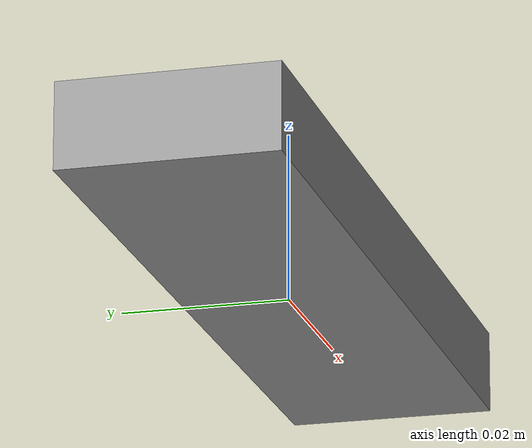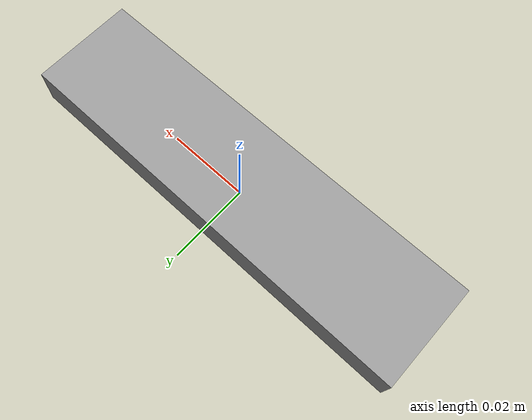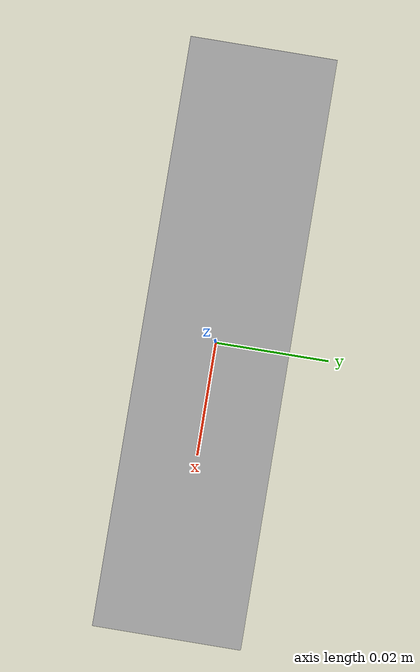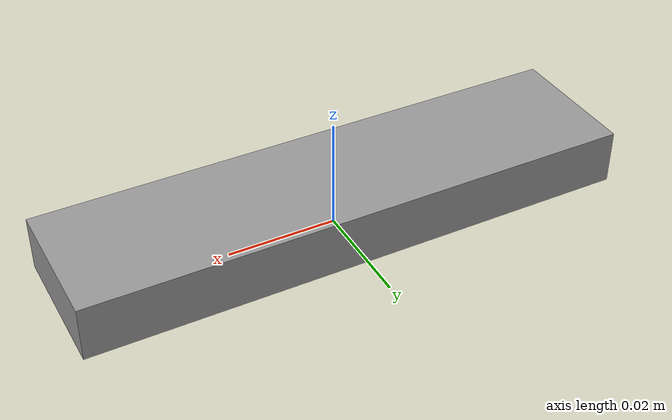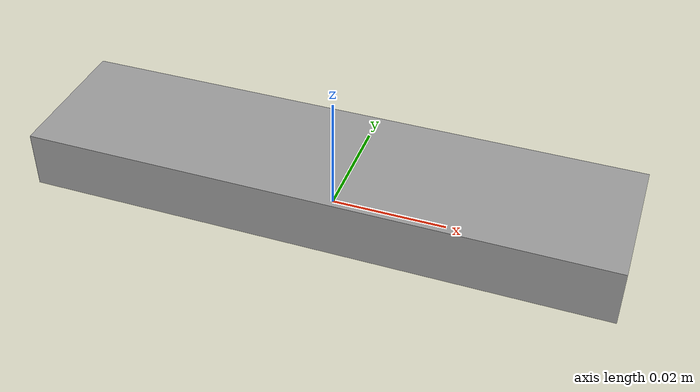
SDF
<?xml version="1.0" ?>
<sdf version="1.5">
  <model name="stone_10_2_5_1cm">
    <link name="link">
      <pose>0 0 0.005 0 0 0</pose>
      <inertial>
        <mass>0.0628</mass>
        <inertia>
          <ixx>3.794166666666667e-06</ixx>
          <ixy>0</ixy>
          <ixz>0</ixz>
          <iyy>5.285666666666667e-05</iyy>
          <iyz>0</iyz>
          <izz>5.560416666666667e-05</izz>
        </inertia>
      </inertial>

      <collision name="collision">
        <geometry>
          <box>
            <size>0.1 0.025 0.01</size>
          </box>
        </geometry>
        <surface>
          <contact>
            <poissons_ratio>0.15</poissons_ratio>
            <elastic_modulus>8.0e+10</elastic_modulus>
            <ode>
              <kp>100000</kp>
              <kd>100</kd>
              <max_vel>100.0</max_vel>
              <min_depth>0.001</min_depth>
            </ode>
          </contact>
          <friction>
            <torsional>
              <coefficient>1.0</coefficient>
              <use_patch_radius>0</use_patch_radius>
              <surface_radius>0.01</surface_radius>
            </torsional>
          </friction>
        </surface>
      </collision>

      <visual name="visual">
        <geometry>
          <box>
            <size>0.1 0.025 0.01</size>
          </box>
        </geometry>
        <material>
          <script>
            <uri>file://media/materials/scripts/gazebo.material</uri>
            <name>Gazebo/Grey</name>
          </script>
        </material>
      </visual>

    </link>
  </model>
</sdf>
